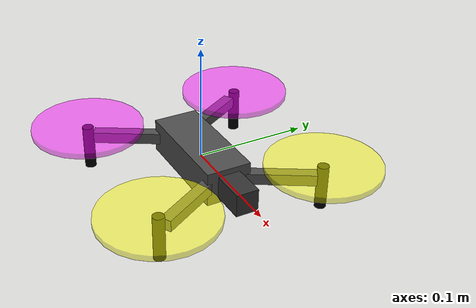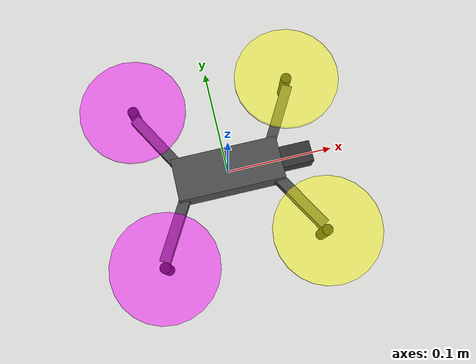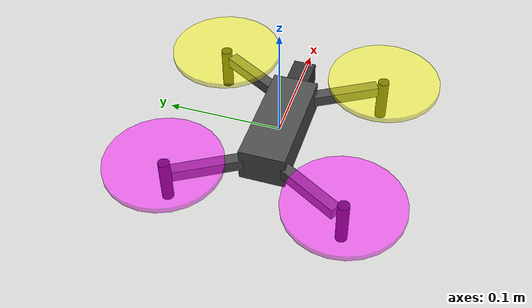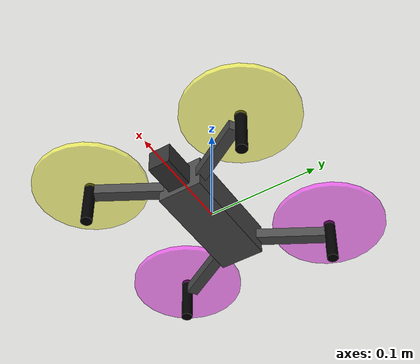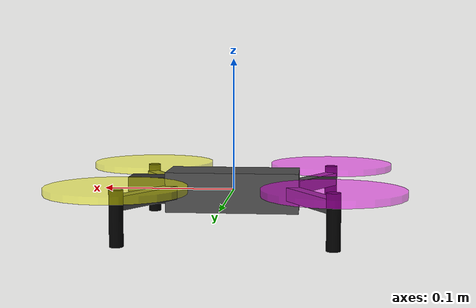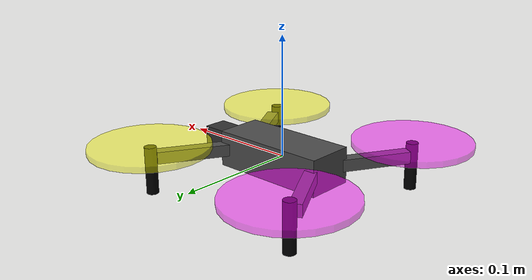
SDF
<?xml version="1.0"?>
<sdf version="1.5">
  <model name="drone">

    <static>false</static>

    <link name='dronelink'>
      <!-- Rotores en distribucion cuadrada
         situados a 25 cms del centro de gravedad
    -->

      <visual name='fuselaje_visual'>
        <pose>0 0 0 0 0 0</pose>
        <geometry>
          <box>
            <size>0.10 0.04 0.03</size>
          </box>
        </geometry>
        <material>
          <ambient>0.3 0.3 0.3 1</ambient>
          <diffuse>0.3 0.3 0.3 1</diffuse>
        </material>
      </visual>

      <collision name='fuselaje_collision'>
        <pose>0 0 0 0 0 0</pose>
        <geometry>
          <box>
            <size>0.10 0.04 0.03</size>
          </box>
        </geometry>
        <surface>
          <friction>
            <ode>
              <mu>0.1</mu>
              <mu2>0.2</mu2>
              <slip1>1.0</slip1>
              <slip2>1.0</slip2>
            </ode>
          </friction>
        </surface>
      </collision>

      <visual name='camara_onboard_visual'>
        <pose>0.065 0 0 0 0 0</pose>
        <geometry>
          <box>
            <size>0.03 0.02 0.02</size>
          </box>
        </geometry>
        <material>
          <ambient>0.2 0.2 0.2 1</ambient>
          <diffuse>0.2 0.2 0.2 1</diffuse>
        </material>
      </visual>

      <collision name='camara_onbodard_collision'>
        <pose>0.065 0 0 0 0 0</pose>
        <geometry>
          <box>
            <size>0.03 0.02 0.02</size>
          </box>
        </geometry>
        <surface>
          <friction>
            <ode>
              <mu>0.1</mu>
              <mu2>0.2</mu2>
              <slip1>1.0</slip1>
              <slip2>1.0</slip2>
            </ode>
          </friction>
        </surface>
      </collision>

      <sensor name='view_camera' type='camera'>
        <plugin name="camera_controller_2" filename="libgazebo_ros_camera.so">
          <alwaysOn>true</alwaysOn>
          <updateRate>0.0</updateRate>
          <cameraName>view_camera</cameraName>
          <robotNamespace>quadcopter</robotNamespace>
        </plugin>
        <pose>-0.3 0 0.2 0 0.3 0</pose>
        <camera name='view_camera'>
          <horizontal_fov>1.57</horizontal_fov>
          <image>
            <width>320</width>
            <height>240</height>
          </image>
          <clip>
            <near>0.01</near>
            <far>20</far>
          </clip>
        </camera>
        <always_on>1</always_on>
        <update_rate>10</update_rate>
        <visualize>0</visualize>
      </sensor>

      <sensor name='onboard_camera_sensor' type='camera'>
        <plugin name="camera_controller" filename="libgazebo_ros_camera.so">
          <alwaysOn>true</alwaysOn>
          <updateRate>0.0</updateRate>
          <cameraName>onboard_camera</cameraName>
          <robotNamespace>quadcopter</robotNamespace>
        </plugin>
        <pose>0.08 0 0 0 0</pose>
        <camera name='onboard_camera_'>
          <horizontal_fov>1.57</horizontal_fov>
          <image>
            <width>320</width>
            <height>240</height>
          </image>
          <clip>
            <near>0.01</near>
            <far>20</far>
          </clip>
        </camera>
        <always_on>1</always_on>
        <update_rate>10</update_rate>
        <visualize>0</visualize>
      </sensor>

      <visual name='brazo_NE_visual'>
        <pose>0.0550 -0.0346 0 0 0 -1.0472</pose>
        <geometry>
          <box>
            <size>0.08 .01 .01</size>
          </box>
        </geometry>
        <material>
          <ambient>0.3 0.3 0.3 1</ambient>
          <diffuse>0.3 0.3 0.3 1</diffuse>
        </material>
      </visual>

      <collision name='brazo_NE_collision'>
        <pose>0.0550 -0.0346 0 0 0 -1.0472</pose>
        <geometry>
          <box>
            <size>0.08 .01 .01</size>
          </box>
        </geometry>
        <surface>
          <friction>
            <ode>
              <mu>0.1</mu>
              <mu2>0.2</mu2>
              <slip1>1.0</slip1>
              <slip2>1.0</slip2>
            </ode>
          </friction>
        </surface>
      </collision>

      <visual name="motor_NE_visual">
        <pose>0.0750 -0.0750 -0.01 0 0 0</pose>
        <geometry>
          <cylinder>
            <radius>.005</radius>
            <length>.04</length>
          </cylinder>
        </geometry>
        <material>
          <ambient>0 0 0 1</ambient> <!--color Red Green Blue Alpha [0-1] -->
          <diffuse>0 0 0 1</diffuse>
        </material>
      </visual>

      <collision name="motor_NE_collision">
        <pose>0.0750 -0.0750 -0.01 0 0 0</pose>
        <geometry>
          <cylinder>
            <radius>.005</radius>
            <length>.04</length>
          </cylinder>
        </geometry>
        <surface>
          <friction>
            <ode>
              <mu>100.0</mu>
              <mu2>50.0</mu2>
              <slip1>0.0</slip1>
              <slip2>0.0</slip2>
            </ode>
          </friction>
        </surface>
      </collision>

      <visual name="rotor_NE_visual">
        <pose>0.0750 -0.0750 0.01 0 0 0</pose>
        <geometry>
          <cylinder>
            <radius>0.05</radius>
            <length>.005</length>
          </cylinder>
        </geometry>
        <material>
          <ambient>1 1 0 0.5</ambient> <!--color Red Green Blue Alpha [0-1] -->
          <diffuse>1 1 0 0.5</diffuse>
        </material>
      </visual>

      <collision name="rotor_NE_collision">
        <pose>0.0750 -0.0750 0.01 0 0 0</pose>
        <geometry>
          <cylinder>
            <radius>0.05</radius>
            <length>.005</length>
          </cylinder>
        </geometry>
        <surface>
          <friction>
            <ode>
              <mu>0.1</mu>
              <mu2>0.2</mu2>
              <slip1>1.0</slip1>
              <slip2>1.0</slip2>
            </ode>
          </friction>
        </surface>
      </collision>

      <visual name='brazo_NW_visual'>
        <pose>0.0550 0.0346 0 0 0 1.0472</pose>
        <geometry>
          <box>
            <size>0.08 .01 .01</size>
          </box>
        </geometry>
        <material>
          <ambient>0.3 0.3 0.3 1</ambient>
          <diffuse>0.3 0.3 0.3 1</diffuse>
        </material>
      </visual>

      <collision name='brazo_NW_collision'>
        <pose>0.0550 0.0346 0 0 0 1.0472</pose>
        <geometry>
          <box>
            <size>0.08 .01 .01</size>
          </box>
        </geometry>
        <surface>
          <friction>
            <ode>
              <mu>0.1</mu>
              <mu2>0.2</mu2>
              <slip1>1.0</slip1>
              <slip2>1.0</slip2>
            </ode>
          </friction>
        </surface>
      </collision>

      <visual name="motor_NW_visual">
        <pose>0.0750 0.0750 -0.01 0 0 0</pose>
        <geometry>
          <cylinder>
            <radius>.005</radius>
            <length>.04</length>
          </cylinder>
        </geometry>
        <material>
          <ambient>0 0 0 1</ambient> <!--color Red Green Blue Alpha [0-1] -->
          <diffuse>0 0 0 1</diffuse>
        </material>
      </visual>

      <collision name="motor_NW_collision">
        <pose>0.0750 0.0750 -0.01 0 0 0</pose>
        <geometry>
          <cylinder>
            <radius>.005</radius>
            <length>.04</length>
          </cylinder>
        </geometry>
        <surface>
          <friction>
            <ode>
              <mu>100.0</mu>
              <mu2>50.0</mu2>
              <slip1>0.0</slip1>
              <slip2>0.0</slip2>
            </ode>
          </friction>
        </surface>
      </collision>

      <visual name="rotor_NW_visual">
        <pose>0.0750 0.0750 0.01 0 0 0</pose>
        <geometry>
          <cylinder>
            <radius>0.05</radius>
            <length>.005</length>
          </cylinder>
        </geometry>
        <material>
          <ambient>1 1 0 0.5</ambient> <!--color Red Green Blue Alpha [0-1] -->
          <diffuse>1 1 0 0.5</diffuse>
        </material>
      </visual>

      <collision name="rotor_NW_collision">
        <pose>0.0750 0.0750 0.01 0 0 0</pose>
        <geometry>
          <cylinder>
            <radius>0.05</radius>
            <length>.005</length>
          </cylinder>
        </geometry>
        <surface>
          <friction>
            <ode>
              <mu>0.1</mu>
              <mu2>0.2</mu2>
              <slip1>1.0</slip1>
              <slip2>1.0</slip2>
            </ode>
          </friction>
        </surface>
      </collision>

      <visual name='brazo_SE_visual'>
        <pose>-0.0550 -0.0346 0 0 0 1.0472</pose>
        <geometry>
          <box>
            <size>0.08 .01 .01</size>
          </box>
        </geometry>
        <material>
          <ambient>0.3 0.3 0.3 1</ambient>
          <diffuse>0.3 0.3 0.3 1</diffuse>
        </material>
      </visual>

      <collision name='brazo_SE_collision'>
        <pose>-0.0550 -0.0346 0 0 0 1.0472</pose>
        <geometry>
          <box>
            <size>0.08 .01 .01</size>
          </box>
        </geometry>
        <surface>
          <friction>
            <ode>
              <mu>0.1</mu>
              <mu2>0.2</mu2>
              <slip1>1.0</slip1>
              <slip2>1.0</slip2>
            </ode>
          </friction>
        </surface>
      </collision>

      <visual name="motor_SE_visual">
        <pose>-0.0750 -0.0750 -0.01 0 0 0</pose>
        <geometry>
          <cylinder>
            <radius>.005</radius>
            <length>.04</length>
          </cylinder>
        </geometry>
        <material>
          <ambient>0 0 0 1</ambient> <!--color Red Green Blue Alpha [0-1] -->
          <diffuse>0 0 0 1</diffuse>
        </material>
      </visual>

      <collision name="motor_SE_collision">
        <pose>-0.0750 -0.0750 -0.01 0 0 0</pose>
        <geometry>
          <cylinder>
            <radius>.005</radius>
            <length>.04</length>
          </cylinder>
        </geometry>
        <surface>
          <friction>
            <ode>
              <mu>100.0</mu>
              <mu2>50.0</mu2>
              <slip1>0.0</slip1>
              <slip2>0.0</slip2>
            </ode>
          </friction>
        </surface>
      </collision>

      <visual name="rotor_SE_visual">
        <pose>-0.0750 -0.0750 0.01 0 0 0</pose>
        <geometry>
          <cylinder>
            <radius>0.05</radius>
            <length>.005</length>
          </cylinder>
        </geometry>
        <material>
          <ambient>1 0 1 0.5</ambient> <!--color Red Green Blue Alpha [0-1] -->
          <diffuse>1 0 1 0.5</diffuse>
        </material>
      </visual>

      <collision name="rotor_SE_collision">
        <pose>-0.0750 -0.0750 0.01 0 0 0</pose>
        <geometry>
          <cylinder>
            <radius>0.05</radius>
            <length>.005</length>
          </cylinder>
        </geometry>
        <surface>
          <friction>
            <ode>
              <mu>0.1</mu>
              <mu2>0.2</mu2>
              <slip1>1.0</slip1>
              <slip2>1.0</slip2>
            </ode>
          </friction>
        </surface>
      </collision>

      <visual name='brazo_SW_visual'>
        <pose>-0.0550 0.0346 0 0 0 -1.0472</pose>
        <geometry>
          <box>
            <size>0.08 .01 .01</size>
          </box>
        </geometry>
        <material>
          <ambient>0.3 0.3 0.3 1</ambient>
          <diffuse>0.3 0.3 0.3 1</diffuse>
        </material>
      </visual>

      <collision name='brazo_SW_collision'>
        <pose>-0.0550 0.0346 0 0 0 -1.0472</pose>
        <geometry>
          <box>
            <size>0.08 .01 .01</size>
          </box>
        </geometry>
        <surface>
          <friction>
            <ode>
              <mu>0.1</mu>
              <mu2>0.2</mu2>
              <slip1>1.0</slip1>
              <slip2>1.0</slip2>
            </ode>
          </friction>
        </surface>
      </collision>

      <visual name="motor_SW_visual">
        <pose>-0.0750 0.0750 -0.01 0 0 0</pose>
        <geometry>
          <cylinder>
            <radius>.005</radius>
            <length>.04</length>
          </cylinder>
        </geometry>
        <material>
          <ambient>0 0 0 1</ambient> <!--color Red Green Blue Alpha [0-1] -->
          <diffuse>0 0 0 1</diffuse>
        </material>
      </visual>

      <collision name="motor_SW_collision">
        <pose>-0.0750 0.0750 -0.01 0 0 0</pose>
        <geometry>
          <cylinder>
            <radius>.005</radius>
            <length>.04</length>
          </cylinder>
        </geometry>
        <surface>
          <friction>
            <ode>
              <mu>100.0</mu>
              <mu2>50.0</mu2>
              <slip1>0.0</slip1>
              <slip2>0.0</slip2>
            </ode>
          </friction>
        </surface>
      </collision>

      <visual name="rotor_SW_visual">
        <pose>-0.0750 0.0750 0.01 0 0 0</pose>
        <geometry>
          <cylinder>
            <radius>0.05</radius>
            <length>.005</length>
          </cylinder>
        </geometry>
        <material>
          <ambient>1 0 1 0.5</ambient> <!--color Red Green Blue Alpha [0-1] -->
          <diffuse>1 0 1 0.5</diffuse>
        </material>
      </visual>

      <collision name="rotor_SW_collision">
        <pose>-0.0750 0.0750 0.01 0 0 0</pose>
        <geometry>
          <cylinder>
            <radius>0.05</radius>
            <length>.005</length>
          </cylinder>
        </geometry>
        <surface>
          <friction>
            <ode>
              <mu>0.1</mu>
              <mu2>0.2</mu2>
              <slip1>1.0</slip1>
              <slip2>1.0</slip2>
            </ode>
          </friction>
        </surface>
      </collision>

      <inertial>
        <mass>0.300</mass>

        <inertia>
          <!-- http://en.wikipedia.org/wiki/List_of_moments_of_inertia -->
          <ixx>0.001022500</ixx> <!-- for a box: ixx = 1/12 * mass * (y*y + z*z) -->
          <ixy>0.0</ixy> <!-- for a box: ixy = 0 -->
          <ixz>0.0</ixz> <!-- for a box: ixz = 0 -->
          <iyy>0.001022500</iyy> <!-- for a box: iyy = 1/12 * mass * (x*x + z*z) -->
          <iyz>0.0</iyz> <!-- for a box: iyz = 0 -->
          <izz>0.002000000</izz> <!-- for a box: izz = 1/12 * mass * (x*x + y*y) -->
        </inertia>
      </inertial>

    </link>
  </model>
</sdf>
